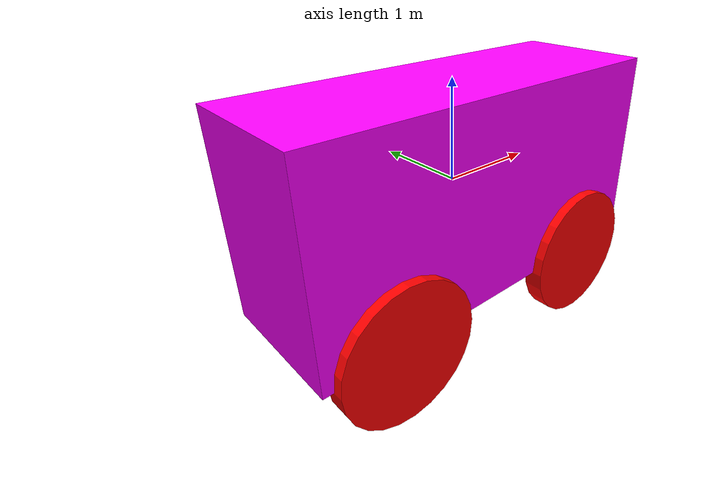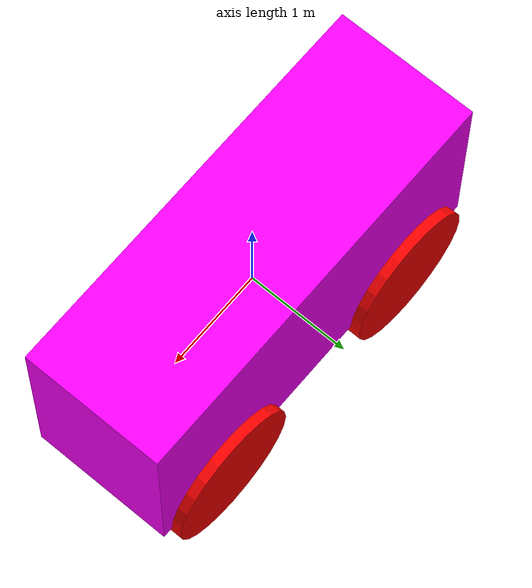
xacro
<?xml version="1.0"?>
<robot xmlns:xacro="http://www.ros.org/wiki/xacro" name="echo_vehicle">

    <link name="base_link">
        <inertial>
            <origin xyz="0.0 0.0 0.0" rpy="0.0 0.0 0.0"/>
            <mass value="20.0"/>
            <inertia ixx="9.933333" ixy="0.0" ixz="0.0" iyy="33.333333333" iyz="0.0" izz="29.9333333333"/>
        </inertial>
        <visual name="base_link">
            <origin xyz="0.0 0.0 0.0" rpy="0.0 0.0 0.0"/>
            <geometry>
                <box size="4.0 1.4 2.0"/>
            </geometry>
            <material name="">
                <color rgba="1.0 0.0 1.0"/>
            </material>
        </visual>
        <collision>
            <origin xyz="0.0 0.0 0.0" rpy="0.0 0.0 0.0"/>
            <geometry>
                <box size="4.0 1.4 2.0"/>
            </geometry>

        </collision>
    </link>

    <link name="right_wheel_back">
        <inertial>
            <origin xyz="0.0 0.0 0.0" rpy="0.0 0.0 0.0"/>
            <mass value="10.0"/>
            <inertia ixx="16.25" ixy="0.0" ixz="0.0" iyy="16.25" iyz="0.0" izz="5"/>
        </inertial>
        <visual name="right_wheel_back">
            <origin xyz="0.0 0.0 0.0" rpy="0.0 0.0 0.0"/>
            <geometry>
                <cylinder radius="0.7" length="0.2"/>
            </geometry>
            <material name="">
                <color rgba="1.0 0.0 0.0 1.0"/>
            </material>
        </visual>
        <collision>
            <origin xyz="0.0 0.0 0.0" rpy="0.0 0.0 0.0"/>
            <geometry>
                <cylinder radius="0.7" length="0.2"/>
            </geometry>
           <surface>
                <friction>
                    <ode>
                        <mu>1000000.0</mu>
                        <mu2>1000000.0</mu2>
                    </ode>
                </friction>
            </surface>
        </collision>

    </link>

    <link name="right_wheel_front">
        <inertial>
            <origin xyz="0.0 0.0 0.0" rpy="0.0 0.0 0.0"/>
            <mass value="10.0"/>
            <inertia ixx="16.25" ixy="0.0" ixz="0.0" iyy="16.25" iyz="0.0" izz="5"/>
        </inertial>
        <visual name="right_wheel_front">
            <origin xyz="0.0 0.0 0.0" rpy="0.0 0.0 0.0"/>
            <geometry>
                <cylinder radius="0.7" length="0.2"/>
            </geometry>
            <material name="">
                <color rgba="1.0 0.0 0.0 1.0"/>
            </material>
        </visual>
        <collision>
            <origin xyz="0.0 0.0 0.0" rpy="0.0 0.0 0.0"/>
            <geometry>
                <cylinder radius="0.7" length="0.2"/>
            </geometry>

            <surface>
                <friction>
                    <ode>
                        <mu>1000000.0</mu>
                        <mu2>1000000.0</mu2>
                    </ode>
                </friction>
            </surface>
        </collision>

    </link>

    <link name="left_wheel_back">
        <inertial>
            <origin xyz="0.0 0.0 0.0" rpy="0.0 0.0 0.0"/>
            <mass value="10.0"/>
            <inertia ixx="16.25" ixy="0.0" ixz="0.0" iyy="16.25" iyz="0.0" izz="5"/>
        </inertial>
        <visual name="left_wheel_back">
            <origin xyz="0.0 0.0 0.0" rpy="0.0 0.0 0.0"/>
            <geometry>
                <cylinder radius="0.7" length="0.2"/>
            </geometry>
            <material name="">
                <color rgba="1.0 0.0 0.0 1.0"/>
            </material>
        </visual>
        <collision>
            <origin xyz="0.0 0.0 0.0" rpy="0.0 0.0 0.0"/>
            <geometry>
                <cylinder radius="0.7" length="0.2"/>
            </geometry>
            <surface>
                <friction>
                    <ode>
                        <mu>1000000.0</mu>
                        <mu2>1000000.0</mu2>
                    </ode>
                </friction>
            </surface>
        </collision>
    </link>
        <link name="left_wheel_front">
        <inertial>
            <origin xyz="0.0 0.0 0.0" rpy="0.0 0.0 0.0"/>
            <mass value="10.0"/>
            <inertia ixx="16.25" ixy="0.0" ixz="0.0" iyy="16.25" iyz="0.0" izz="5"/>

        </inertial>
        <visual name="left_wheel_front">
            <origin xyz="0.0 0.0 0.0" rpy="0.0 0.0 0.0"/>
            <geometry>
                <cylinder radius="0.7" length="0.2"/>
            </geometry>
            <material name="">
                <color rgba="1.0 0.0 0.0 1.0"/>
            </material>
        </visual>
        <collision>
            <origin xyz="0.0 0.0 0.0" rpy="0.0 0.0 0.0"/>
            <geometry>
                <cylinder radius="0.7" length="0.2"/>
            </geometry>
            <surface>
                <friction>
                    <ode>
                        <mu>1000000.0</mu>
                        <mu2>1000000.0</mu2>
                    </ode>
                </friction>
            </surface>
        </collision>
    </link>

    <joint name="right_back_joint" type="continuous">
        <origin xyz="-1.2 -0.7 -1.0" rpy="-1.57 1.57 0.0"/>
        <parent link="base_link"/>
        <child link="right_wheel_back"/>
        <axis xyz="0.0 0.0 1.0" rpy="0.0 0.0 0.0"/>
        <limit effort="1.0" velocity="1.0"/>
    </joint>

    <joint name="right_front_joint" type="continuous">
        <origin xyz="1.2 -0.7 -1.0" rpy="-1.57 -1.57 0.0"/>
        <parent link="base_link"/>
        <child link="right_wheel_front"/>
        <axis xyz="0.0 0.0 1.0" rpy="0.0 0.0 0.0"/>
        <limit effort="1.0" velocity="1.0"/>
    </joint>

    <joint name="left_back_joint" type="continuous">
        <origin xyz="-1.2 0.7 -1.0" rpy="-1.57 1.57 0.0"/>
        <parent link="base_link"/>
        <child link="left_wheel_back"/>
        <axis xyz="0.0 0.0 1.0" rpy="0.0 0.0 0.0"/>
        <limit effort="1.0" velocity="1.0"/>
    </joint>

    <joint name="left_front_joint" type="continuous">
        <origin xyz="1.2 0.7 -1.0" rpy="-1.57 -1.57 0.0"/>
        <parent link="base_link"/>
        <child link="left_wheel_front"/>
        <axis xyz="0.0 0.0 1.0" rpy="0.0 0.0 0.0"/>
        <limit effort="1.0" velocity="1.0"/>
    </joint>

    <gazebo>
        <plugin name="wheel_drive_controller" filename="libgazebo_ros_diff_drive.so">
            <!-- wheels -->
            <num_wheel_pairs>2</num_wheel_pairs>
            <left_joint>left_back_joint</left_joint>
            <left_joint>left_front_joint</left_joint>
            <right_joint>right_front_joint</right_joint>
            <right_joint>right_back_joint</right_joint>

            <!-- kinematics -->
            <wheel_separation>1.4</wheel_separation>
            <wheel_diameter>0.7</wheel_diameter>

            <!-- Limits -->
            <max_wheel_torque>200.0</max_wheel_torque>
            <max_wheel_acceleration>10.0</max_wheel_acceleration>

            <!-- Output -->
            <odometry_frame>odom</odometry_frame>
            <robot_base_frame>base_link</robot_base_frame>

            <!-- topic & re remappings -->

            <publish_odom>true</publish_odom>
            <publish_odom_tf>true</publish_odom_tf>
            <update_rate>30.0</update_rate>
        </plugin>
    </gazebo>

</robot>
